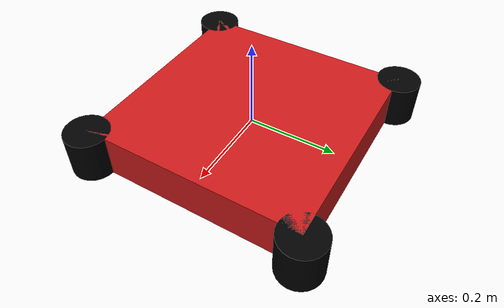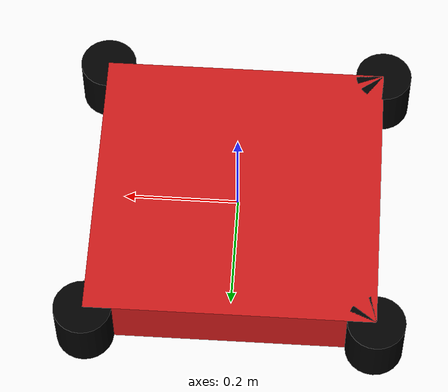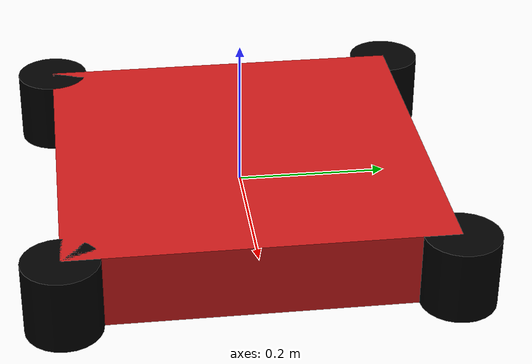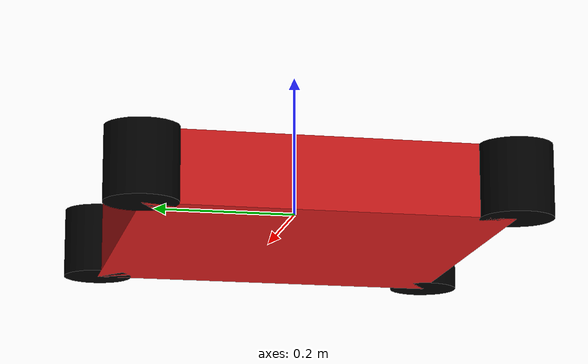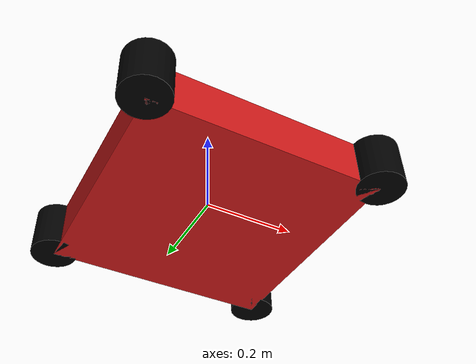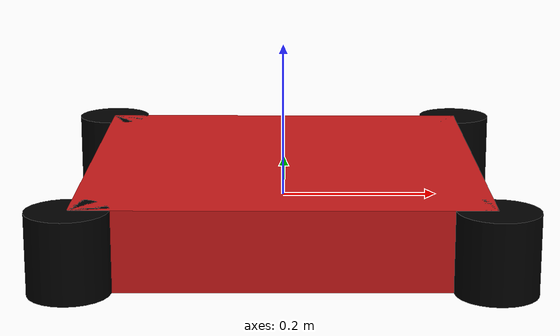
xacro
<?xml version="1.0" ?>
<robot xmlns:xacro="https://www.ros.org/wiki/xacro" name="rooibot">

    <!-- Include the materials (colours) -->
    <xacro:include filename="materials.xacro" />

    <!-- Define the world link -->
     <link name="world"></link>

    <!-- Define the base link -->
    <link name="base_link">
        <visual>
            <geometry>
                <box size="0.5 0.5 0.1" />
            </geometry>
            <material name="red" />
        </visual>
    </link>

    <!-- Define the wheels -->
    <link name="wheel1">
        <visual>
            <geometry>
                <cylinder length="0.1" radius="0.05" />
            </geometry>
            <material name="black" />
        </visual>
    </link>

    <link name="wheel2">
        <visual>
            <geometry>
                <cylinder length="0.1" radius="0.05" />
            </geometry>
            <material name="black" />
        </visual>
    </link>

    <link name="wheel3">
        <visual>
            <geometry>
                <cylinder length="0.1" radius="0.05" />
            </geometry>
            <material name="black" />
        </visual>
    </link>

    <link name="wheel4">
        <visual>
            <geometry>
                <cylinder length="0.1" radius="0.05" />
            </geometry>
            <material name="black" />
        </visual>
    </link>

    <!-- Define the joints -->
    <joint name="world_to_base" type="fixed">
        <parent link="world" />
        <child link="base_link" />
        <origin xyz="0 0 0" rpy="0 0 0" />
    </joint>

    <joint name="joint1" type="fixed">
        <parent link="base_link" />
        <child link="wheel1" />
        <origin xyz="0.25 0.25 0" rpy="0 0 0" />
    </joint>

    <joint name="joint2" type="fixed">
        <parent link="base_link" />
        <child link="wheel2" />
        <origin xyz="-0.25 0.25 0" rpy="0 0 0" />
    </joint>

    <joint name="joint3" type="fixed">
        <parent link="base_link" />
        <child link="wheel3" />
        <origin xyz="0.25 -0.25 0" rpy="0 0 0" />
    </joint>

    <joint name="joint4" type="fixed">
        <parent link="base_link" />
        <child link="wheel4" />
        <origin xyz="-0.25 -0.25 0" rpy="0 0 0" />
    </joint>

</robot>

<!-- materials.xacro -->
<robot xmlns:xacro="http://www.ros.org/wiki/xacro">
    <!-- Define red material -->
    <xacro:property name="red" value="0.8 0.1 0.1 1" />
    <material name="red">
        <color rgba="${red}" />
    </material>

    <!-- Define black material -->
    <xacro:property name="black" value="0 0 0 1" />
    <material name="black">
        <color rgba="${black}" />
    </material>
</robot>
